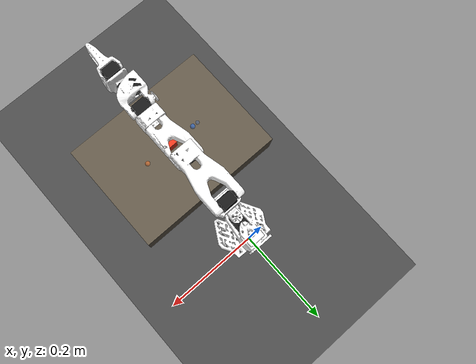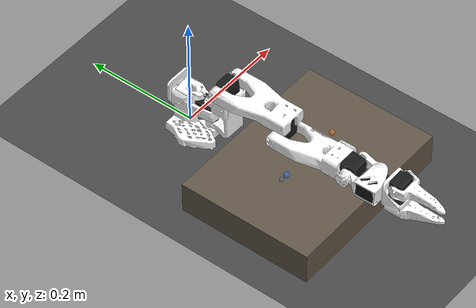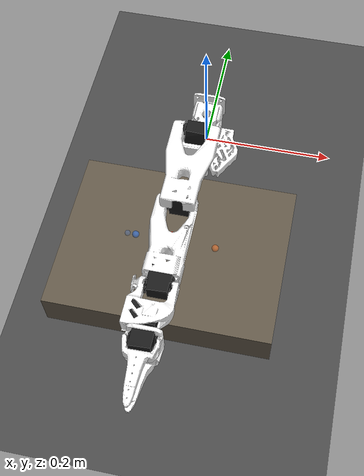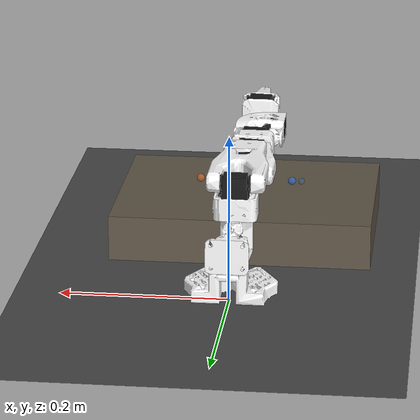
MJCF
<mujoco model="so101_pickup_scene">
  <include file="so101_arm.xml"/>

  <option timestep="0.002" gravity="0 0 -9.81" integrator="RK4"/>

  <visual>
    <global offwidth="1280" offheight="960"/>
  </visual>

  <asset>
    <texture name="grid" type="2d" builtin="checker" rgb1="0.25 0.25 0.25" rgb2="0.32 0.32 0.32" width="256" height="256"/>
    <material name="floor_mat" texture="grid" texrepeat="6 6" reflectance="0.1"/>
    <material name="table_mat" rgba="0.38 0.34 0.28 1"/>
    <material name="object_mat" rgba="0.92 0.22 0.12 1"/>
  </asset>

  <worldbody>
    <light pos="0.4 -0.4 0.8" dir="-0.4 0.4 -0.8"/>
    <camera name="overview" pos="0.36 -0.58 0.38" xyaxes="0.85 0.53 0 -0.24 0.38 0.89"/>
    <geom name="floor" type="plane" size="1.5 1.5 0.03" material="floor_mat"/>
    <geom name="support_surface" type="box" pos="0 -0.235 0.028" size="0.16 0.12 0.028" material="table_mat" friction="1.2 0.01 0.0001"/>
    <body name="pickup_object" pos="0 -0.235 0.069">
      <freejoint name="pickup_object_freejoint"/>
      <geom name="pickup_object_geom" type="box" size="0.009 0.007 0.013" mass="0.004" material="object_mat"
            solimp="0.9 0.95 0.001" solref="0.015 1" friction="1.8 0.03 0.0003"/>
    </body>
    <body name="target_marker" mocap="true" pos="0.02 -0.24 0.08">
      <geom name="target_marker_geom" type="sphere" size="0.004" rgba="0.1 0.8 0.25 0.45" contype="0" conaffinity="0"/>
    </body>
    <body name="place_left_marker" mocap="true" pos="-0.055 -0.235 0.069">
      <geom name="place_left_marker_geom" type="sphere" size="0.005" rgba="0.15 0.45 0.95 0.55" contype="0" conaffinity="0"/>
    </body>
    <body name="place_left_command_marker" mocap="true" pos="-0.067 -0.235 0.069">
      <geom name="place_left_command_marker_geom" type="sphere" size="0.004" rgba="0.15 0.45 0.95 0.25" contype="0" conaffinity="0"/>
    </body>
    <body name="place_right_marker" mocap="true" pos="0.06 -0.235 0.069">
      <geom name="place_right_marker_geom" type="sphere" size="0.005" rgba="0.95 0.45 0.15 0.55" contype="0" conaffinity="0"/>
    </body>
  </worldbody>
</mujoco>

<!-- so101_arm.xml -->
<mujoco model="so101_arm">
  <compiler angle="radian" meshdir="trs_so_arm100/assets"/>

  <option cone="elliptic" impratio="10"/>

  <asset>
    <material name="white" rgba="1 1 1 1"/>
    <material name="black" rgba="0.1 0.1 0.1 1"/>

    <mesh name="Base" file="Base.stl"/>
    <mesh name="Base_Motor" file="Base_Motor.stl"/>
    <mesh name="Rotation_Pitch" file="Rotation_Pitch.stl"/>
    <mesh name="Rotation_Pitch_Motor" file="Rotation_Pitch_Motor.stl"/>
    <mesh name="Upper_Arm" file="Upper_Arm.stl"/>
    <mesh name="Upper_Arm_Motor" file="Upper_Arm_Motor.stl"/>
    <mesh name="Lower_Arm" file="Lower_Arm.stl"/>
    <mesh name="Lower_Arm_Motor" file="Lower_Arm_Motor.stl"/>
    <mesh name="Wrist_Pitch_Roll" file="Wrist_Pitch_Roll.stl"/>
    <mesh name="Wrist_Pitch_Roll_Motor" file="Wrist_Pitch_Roll_Motor.stl"/>
    <mesh name="Fixed_Jaw" file="Fixed_Jaw.stl"/>
    <mesh name="Fixed_Jaw_Motor" file="Fixed_Jaw_Motor.stl"/>
    <mesh name="Fixed_Jaw_Collision_1" file="Fixed_Jaw_Collision_1.stl"/>
    <mesh name="Fixed_Jaw_Collision_2" file="Fixed_Jaw_Collision_2.stl"/>
    <mesh name="Moving_Jaw" file="Moving_Jaw.stl"/>
    <mesh name="Moving_Jaw_Collision_1" file="Moving_Jaw_Collision_1.stl"/>
    <mesh name="Moving_Jaw_Collision_2" file="Moving_Jaw_Collision_2.stl"/>
    <mesh name="Moving_Jaw_Collision_3" file="Moving_Jaw_Collision_3.stl"/>
  </asset>

  <default>
    <default class="so_arm100">
      <joint frictionloss="0.1" armature="0.1"/>
      <position kp="50" dampratio="1" forcerange="-3.5 3.5"/>
      <default class="Rotation">
        <joint axis="0 1 0" range="-1.92 1.92"/>
      </default>
      <default class="Pitch">
        <joint axis="1 0 0" range="-3.32 0.174"/>
      </default>
      <default class="Elbow">
        <joint axis="1 0 0" range="-0.174 3.14"/>
      </default>
      <default class="Wrist_Pitch">
        <joint axis="1 0 0" range="-1.66 1.66"/>
      </default>
      <default class="Wrist_Roll">
        <joint axis="0 1 0" range="-2.79 2.79"/>
      </default>
      <default class="Jaw">
        <joint axis="0 0 1" range="-0.174 1.75"/>
        <position forcerange="-0.20 0.20"/>
      </default>
      <default class="visual">
        <geom type="mesh" contype="0" conaffinity="0" density="0" group="2" material="white"/>
        <default class="motor_visual">
          <geom material="black"/>
        </default>
      </default>
      <default class="collision">
        <geom group="3" type="mesh" material="white"/>
        <default class="finger_collision">
          <geom type="box" solimp="0.9 0.95 0.001" solref="0.015 1" friction="1 0.005 0.0001"/>
        </default>
      </default>
    </default>
  </default>

  <worldbody>
    <body name="Base" childclass="so_arm100">
      <geom type="mesh" mesh="Base" class="visual"/>
      <geom type="mesh" mesh="Base_Motor" class="motor_visual"/>
      <geom type="mesh" mesh="Base" class="collision"/>
      <body name="Rotation_Pitch" pos="0 -0.0452 0.0165" quat="0.707105 0.707108 0 0">
        <inertial pos="-9.07886e-05 0.0590972 0.031089" quat="0.363978 0.441169 -0.623108 0.533504" mass="0.119226"
          diaginertia="5.94278e-05 5.89975e-05 3.13712e-05"/>
        <joint name="Rotation" class="Rotation"/>
        <geom type="mesh" mesh="Rotation_Pitch" class="visual"/>
        <geom type="mesh" mesh="Rotation_Pitch_Motor" class="motor_visual"/>
        <geom type="mesh" mesh="Rotation_Pitch" class="collision"/>
        <body name="Upper_Arm" pos="0 0.1025 0.0306" euler="1.57079 0 0">
          <inertial pos="-1.72052e-05 0.0701802 0.00310545" quat="0.50104 0.498994 -0.493562 0.50632" mass="0.162409"
            diaginertia="0.000213312 0.000167164 7.01522e-05"/>
          <joint name="Pitch" class="Pitch"/>
          <geom type="mesh" mesh="Upper_Arm" class="visual"/>
          <geom type="mesh" mesh="Upper_Arm_Motor" class="motor_visual"/>
          <geom type="mesh" mesh="Upper_Arm" class="collision"/>
          <body name="Lower_Arm" pos="0 0.11257 0.028" euler="-1.57079 0 0">
            <inertial pos="-0.00339604 0.00137796 0.0768007" quat="0.701995 0.0787996 0.0645626 0.704859"
              mass="0.147968" diaginertia="0.000138803 0.000107748 4.84242e-05"/>
            <joint name="Elbow" class="Elbow"/>
            <geom type="mesh" mesh="Lower_Arm" class="visual"/>
            <geom type="mesh" mesh="Lower_Arm_Motor" class="motor_visual"/>
            <geom type="mesh" mesh="Lower_Arm" class="collision"/>
            <body name="Wrist_Pitch_Roll" pos="0 0.0052 0.1349" euler="-1.57079 0 0">
              <inertial pos="-0.00852653 -0.0352279 -2.34622e-05" quat="-0.0522806 0.705235 0.0549524 0.704905"
                mass="0.0661321" diaginertia="3.45403e-05 2.39041e-05 1.94704e-05"/>
              <joint name="Wrist_Pitch" class="Wrist_Pitch"/>
              <geom type="mesh" mesh="Wrist_Pitch_Roll" class="visual"/>
              <geom type="mesh" mesh="Wrist_Pitch_Roll_Motor" class="motor_visual"/>
              <geom type="mesh" mesh="Wrist_Pitch_Roll" class="collision"/>
              <body name="Fixed_Jaw" pos="0 -0.0601 0" euler="0 1.57079 0">
                <inertial pos="0.00552377 -0.0280167 0.000483583" quat="0.41836 0.620891 -0.350644 0.562599"
                  mass="0.0929859" diaginertia="5.03136e-05 4.64098e-05 2.72961e-05"/>
                <joint name="Wrist_Roll" class="Wrist_Roll"/>
                <geom type="mesh" mesh="Fixed_Jaw" class="visual"/>
                <geom type="mesh" mesh="Fixed_Jaw_Motor" class="motor_visual"/>
                <geom type="mesh" mesh="Fixed_Jaw_Collision_1" class="collision"/>
                <geom type="mesh" mesh="Fixed_Jaw_Collision_2" class="collision"/>
                <geom class="finger_collision" name="fixed_jaw_pad_1" size="0.001 0.005 0.004" pos="0.0089 -0.1014 0"/>
                <geom class="finger_collision" name="fixed_jaw_pad_2" size="0.001 0.005 0.006" pos="0.0109 -0.0914 0"/>
                <geom class="finger_collision" name="fixed_jaw_pad_3" size="0.001 0.01 0.007" pos="0.0126 -0.0768 0"/>
                <geom class="finger_collision" name="fixed_jaw_pad_4" size="0.001 0.01 0.008" pos="0.0143 -0.0572 0"/>
                <!-- Calibrated TCP at the center of a grasped pickup object, not on the fixed-jaw tip. -->
                <site name="ee_site" pos="-0.009 -0.092 0" size="0.004" rgba="1 0.2 0.1 1"/>
                <body name="Moving_Jaw" pos="-0.0202 -0.0244 0" quat="1.34924e-11 -3.67321e-06 1 -3.67321e-06">
                  <inertial pos="-0.00161745 -0.0303473 0.000449646" quat="0.696562 0.716737 -0.0239844 -0.0227026"
                    mass="0.0202444" diaginertia="1.11265e-05 8.99651e-06 2.99548e-06"/>
                  <joint name="Jaw" class="Jaw"/>
                  <geom type="mesh" mesh="Moving_Jaw" class="visual"/>
                  <geom type="mesh" mesh="Moving_Jaw_Collision_1" class="collision"/>
                  <geom type="mesh" mesh="Moving_Jaw_Collision_2" class="collision"/>
                  <geom type="mesh" mesh="Moving_Jaw_Collision_3" class="collision"/>
                  <geom class="finger_collision" name="moving_jaw_pad_1" size="0.001 0.005 0.004"
                    pos="-0.0113 -0.077 0"/>
                  <geom class="finger_collision" name="moving_jaw_pad_2" size="0.001 0.005 0.006"
                    pos="-0.0093 -0.067 0"/>
                  <geom class="finger_collision" name="moving_jaw_pad_3" size="0.001 0.01 0.006"
                    pos="-0.0073 -0.055 0"/>
                  <geom class="finger_collision" name="moving_jaw_pad_4" size="0.001 0.01 0.008"
                    pos="-0.0073 -0.035 0"/>
                </body>
              </body>
            </body>
          </body>
        </body>
      </body>
    </body>
  </worldbody>

  <actuator>
    <position class="Rotation" name="Rotation" joint="Rotation" inheritrange="1"/>
    <position class="Pitch" name="Pitch" joint="Pitch" inheritrange="1"/>
    <position class="Elbow" name="Elbow" joint="Elbow" inheritrange="1"/>
    <position class="Wrist_Pitch" name="Wrist_Pitch" joint="Wrist_Pitch" inheritrange="1"/>
    <position class="Wrist_Roll" name="Wrist_Roll" joint="Wrist_Roll" inheritrange="1"/>
    <position class="Jaw" name="Jaw" joint="Jaw" inheritrange="1"/>
  </actuator>

  <contact>
    <exclude body1="Base" body2="Rotation_Pitch"/>
  </contact>

  <keyframe>
    <key name="home" qpos="0 -1.57 1.57 1.57 -1.57 0" ctrl="0 -1.57 1.57 1.57 -1.57 0"/>
    <key name="rest" qpos="0 -3.32 3.11 1.18 0 -0.174" ctrl="0 -3.32 3.11 1.18 0 -0.174"/>
  </keyframe>
</mujoco>
